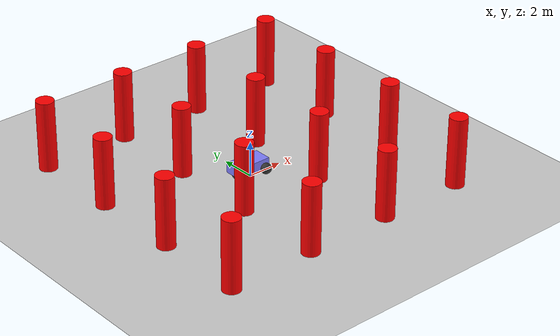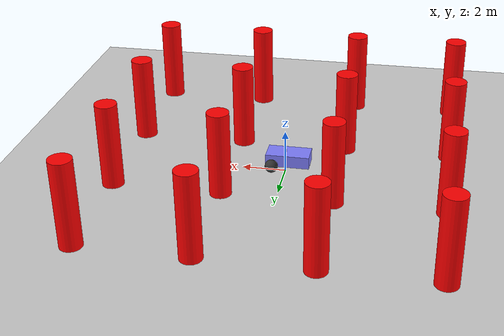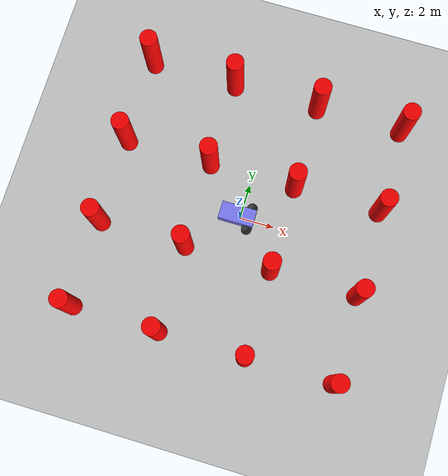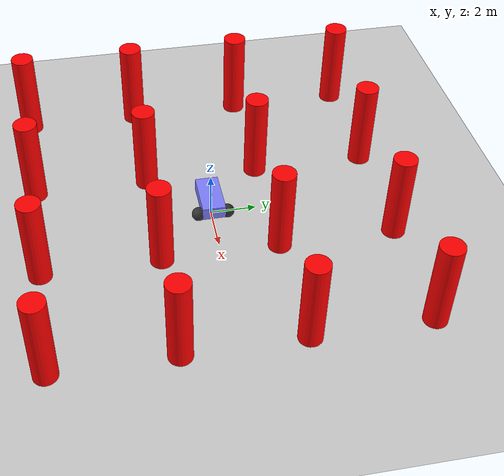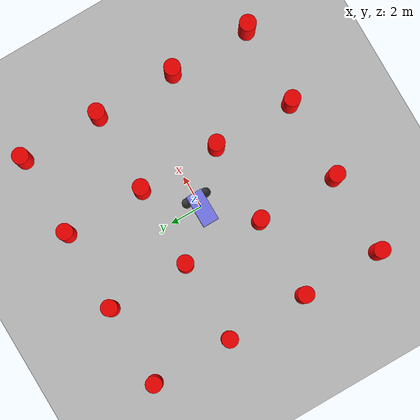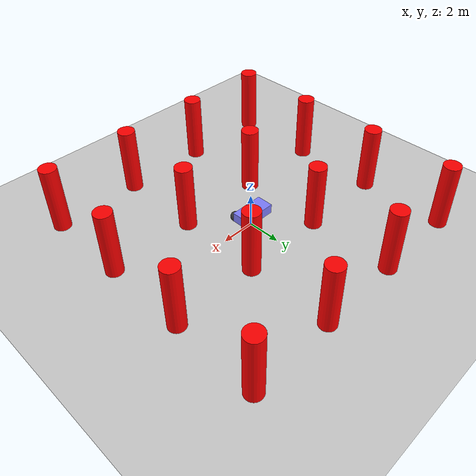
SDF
<?xml version="1.0" ?>
<sdf version="1.8">
  <world name="demo">
    <plugin
      filename="ignition-gazebo-physics-system"
      name="ignition::gazebo::systems::Physics">
    </plugin>
    <plugin
      filename="ignition-gazebo-sensors-system"
      name="ignition::gazebo::systems::Sensors">
      <render_engine>ogre2</render_engine>
    </plugin>
    <plugin
      filename="ignition-gazebo-scene-broadcaster-system"
      name="ignition::gazebo::systems::SceneBroadcaster">
    </plugin>
    <plugin
      filename="ignition-gazebo-user-commands-system"
      name="ignition::gazebo::systems::UserCommands">
    </plugin>
    <plugin
      filename="ignition-gazebo-contact-system"
      name="ignition::gazebo::systems::Contact">
    </plugin>
    <plugin
      filename="libignition-gazebo-imu-system.so"
      name="ignition::gazebo::systems::Imu">
    </plugin>

    <light name="sun" type="directional">
      <cast_shadows>true</cast_shadows>
      <pose>0 0 10 0 0 0</pose>
      <diffuse>0.8 0.8 0.8 1</diffuse>
      <specular>0.2 0.2 0.2 1</specular>
      <attenuation>
        <range>1000</range>
        <constant>0.9</constant>
        <linear>0.01</linear>
        <quadratic>0.001</quadratic>
      </attenuation>
      <direction>-0.5 0.1 -0.9</direction>
    </light>

    <model name="ground_plane">
      <static>true</static>
      <link name="link">
        <collision name="collision">
          <geometry>
            <plane>
              <normal>0 0 1</normal>
              <size>100 100</size>
            </plane>
          </geometry>
        </collision>
        <visual name="visual">
          <geometry>
            <plane>
              <normal>0 0 1</normal>
              <size>100 100</size>
            </plane>
          </geometry>
          <material>
            <ambient>0.8 0.8 0.8 1</ambient>
            <diffuse>0.8 0.8 0.8 1</diffuse>
            <specular>0.8 0.8 0.8 1</specular>
          </material>
        </visual>
      </link>
    </model>

    <include>
      <pose>-7.5 7.5 2 0 0 0</pose>
      <uri>home/aymeric/Documents/Programmation/ROS/rover_ws/src/rover_base_test1/gazebo/models/Cylindre</uri>
      <name>Cyl1</name>
    </include>

    <include>
      <pose>-2.5 7.5 2 0 0 0</pose>
      <uri>home/aymeric/Documents/Programmation/ROS/rover_ws/src/rover_base_test1/gazebo/models/Cylindre</uri>
      <name>Cyl2</name>
    </include>

    <include>
      <pose>2.5 7.5 2 0 0 0</pose>
      <uri>home/aymeric/Documents/Programmation/ROS/rover_ws/src/rover_base_test1/gazebo/models/Cylindre</uri>
      <name>Cyl3</name>
    </include>

    <include>
      <pose>7.5 7.5 2 0 0 0</pose>
      <uri>home/aymeric/Documents/Programmation/ROS/rover_ws/src/rover_base_test1/gazebo/models/Cylindre</uri>
      <name>Cyl4</name>
    </include>

    <include>
      <pose>-7.5 2.5 2 0 0 0</pose>
      <uri>home/aymeric/Documents/Programmation/ROS/rover_ws/src/rover_base_test1/gazebo/models/Cylindre</uri>
      <name>Cyl5</name>
    </include>

    <include>
      <pose>-2.5 2.5 2 0 0 0</pose>
      <uri>home/aymeric/Documents/Programmation/ROS/rover_ws/src/rover_base_test1/gazebo/models/Cylindre</uri>
      <name>Cyl6</name>
    </include>

    <include>
      <pose>2.5 2.5 2 0 0 0</pose>
      <uri>home/aymeric/Documents/Programmation/ROS/rover_ws/src/rover_base_test1/gazebo/models/Cylindre</uri>
      <name>Cyl7</name>
    </include>

    <include>
      <pose>7.5 2.5 2 0 0 0</pose>
      <uri>home/aymeric/Documents/Programmation/ROS/rover_ws/src/rover_base_test1/gazebo/models/Cylindre</uri>
      <name>Cyl8</name>
    </include>

    <include>
      <pose>-7.5 -2.5 2 0 0 0</pose>
      <uri>home/aymeric/Documents/Programmation/ROS/rover_ws/src/rover_base_test1/gazebo/models/Cylindre</uri>
      <name>Cyl9</name>
    </include>

    <include>
      <pose>-2.5 -2.5 2 0 0 0</pose>
      <uri>home/aymeric/Documents/Programmation/ROS/rover_ws/src/rover_base_test1/gazebo/models/Cylindre</uri>
      <name>Cyl10</name>
    </include>

    <include>
      <pose>2.5 -2.5 2 0 0 0</pose>
      <uri>home/aymeric/Documents/Programmation/ROS/rover_ws/src/rover_base_test1/gazebo/models/Cylindre</uri>
      <name>Cyl11</name>
    </include>

    <include>
      <pose>7.5 -2.5 2 0 0 0</pose>
      <uri>home/aymeric/Documents/Programmation/ROS/rover_ws/src/rover_base_test1/gazebo/models/Cylindre</uri>
      <name>Cyl12</name>
    </include>

    <include>
      <pose>-7.5 -7.5 2 0 0 0</pose>
      <uri>home/aymeric/Documents/Programmation/ROS/rover_ws/src/rover_base_test1/gazebo/models/Cylindre</uri>
      <name>Cyl13</name>
    </include>

    <include>
      <pose>-2.5 -7.5 2 0 0 0</pose>
      <uri>home/aymeric/Documents/Programmation/ROS/rover_ws/src/rover_base_test1/gazebo/models/Cylindre</uri>
      <name>Cyl14</name>
    </include>

    <include>
      <pose>2.5 -7.5 2 0 0 0</pose>
      <uri>home/aymeric/Documents/Programmation/ROS/rover_ws/src/rover_base_test1/gazebo/models/Cylindre</uri>
      <name>Cyl15</name>
    </include>

    <include>
      <pose>7.5 -7.5 2 0 0 0</pose>
      <uri>home/aymeric/Documents/Programmation/ROS/rover_ws/src/rover_base_test1/gazebo/models/Cylindre</uri>
      <name>Cyl16</name>
    </include>

    <include>
      <pose>0 0 0.55 0 0 0</pose>
      <!--Valide-->
      <uri>home/aymeric/Documents/Programmation/ROS/rover_ws/src/rover_base_test1/urdf/rover_base2.sdf</uri>
      <!--Valide-->
      <!--valide avec gazebo directement, non valide dand le launch : trouver une solution-->
      <name>rover_base2</name>

      <plugin
        filename="ignition-gazebo-joint-state-publisher-system"
        name="ignition::gazebo::systems::JointStatePublisher">
      </plugin>

      <plugin
        filename="ignition-gazebo-pose-publisher-system"
        name="ignition::gazebo::systems::PosePublisher">
        <publish_link_pose>true</publish_link_pose>
        <use_pose_vector_msg>true</use_pose_vector_msg>
        <static_publisher>true</static_publisher>
        <static_update_frequency>1</static_update_frequency>
      </plugin>

      <plugin
        filename="ignition-gazebo-odometry-publisher-system"
        name="ignition::gazebo::systems::OdometryPublisher">
        <odom_frame>rover_base2/odom</odom_frame>
        <robot_base_frame>rover_base2</robot_base_frame>
      </plugin>

      <plugin
          filename="ignition-gazebo-diff-drive-system"
          name="ignition::gazebo::systems::DiffDrive">
          <left_joint>left_wheel_joint</left_joint>
          <right_joint>right_wheel_joint</right_joint>
          <wheel_separation>1.2</wheel_separation>
          <wheel_radius>0.4</wheel_radius>
          <topic>cmd_vel</topic>
          <odom_publish_frequency>1</odom_publish_frequency>
          <max_linear_acceleration>1</max_linear_acceleration>
          <min_linear_acceleration>-1</min_linear_acceleration>
          <max_angular_acceleration>2</max_angular_acceleration>
          <min_angular_acceleration>-2</min_angular_acceleration>
          <max_linear_velocity>0.5</max_linear_velocity>
          <min_linear_velocity>-0.5</min_linear_velocity>
          <max_angular_velocity>1</max_angular_velocity>
          <min_angular_velocity>-1</min_angular_velocity>
      </plugin>

    </include>

  </world>
</sdf>

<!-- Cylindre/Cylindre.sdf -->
<sdf version="1.6">
  <model name="Cylindre">
    <static>true</static>
    <link name="Cylindre">
      <inertial>
        <mass>100</mass>
        <inertia>
          <ixx>210.42</ixx>
          <ixy>0</ixy>
          <ixz>0</ixz>
          <iyy>416.67</iyy>
          <iyz>0</iyz>
          <izz>210.42</izz>
        </inertia>
      </inertial>

      <collision name="collision">
        <geometry>
          <cylinder>
            <length>4</length>
            <radius>0.5</radius>
          </cylinder>
        </geometry>
      </collision>

      <visual name="visual">
        <geometry>
          <cylinder>
            <length>4</length>
            <radius>0.5</radius>
          </cylinder>
        </geometry>
        <material>
            <ambient>1 0 0 1</ambient>
            <diffuse>1 0 0 1</diffuse>
            <specular>1 0 0 1</specular>
        </material>
      </visual>
    </link>
  </model>
</sdf>

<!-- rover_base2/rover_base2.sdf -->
<sdf version="1.8">
    <model name='rover_base2'>
      <link name='base_link'>
        <pose>-0.151427 -0 0.175 0 -0 0</pose>
        <inertial>
          <mass>1.14395</mass>
          <inertia>
            <ixx>0.126164</ixx>
            <ixy>0</ixy>
            <ixz>0</ixz>
            <iyy>0.416519</iyy>
            <iyz>0</iyz>
            <izz>0.481014</izz>
          </inertia>
        </inertial>
        <visual name='visual_chassis'>
          <geometry>
            <box>
              <size>2.01142 1 0.568726</size>
            </box>
          </geometry>
          <material>
            <ambient>0.5 0.5 1.0 1</ambient>
            <diffuse>0.5 0.5 1.0 1</diffuse>
            <specular>0.0 0.0 1.0 1</specular>
          </material>
        </visual>
        <collision name='collision_chassis'>
          <geometry>
            <box>
              <size>2.01142 1 0.568726</size>
            </box>
          </geometry>
        </collision>
      </link>

      <link name='left_wheel'>
        <pose>0.554283 0.625029 -0.025 -1.5707 0 0</pose>
        <inertial>
          <mass>2</mass>
          <inertia>
            <ixx>0.145833</ixx>
            <ixy>0</ixy>
            <ixz>0</ixz>
            <iyy>0.145833</iyy>
            <iyz>0</iyz>
            <izz>0.125</izz>
          </inertia>
        </inertial>
        <visual name='visual_left_wheel'>
          <geometry>
            <sphere>
              <radius>0.3</radius>
            </sphere>
          </geometry>
          <material>
            <ambient>0.2 0.2 0.2 1</ambient>
            <diffuse>0.2 0.2 0.2 1</diffuse>
            <specular>0.2 0.2 0.2 1</specular>
          </material>
        </visual>
        <collision name='collision_left_wheel'>
          <geometry>
            <sphere>
              <radius>0.3</radius>
            </sphere>
          </geometry>
        </collision>
      </link>

      <link name='right_wheel'>
        <pose>0.554282 -0.625029 -0.025 -1.5707 0 0</pose>
        <inertial>
          <mass>2</mass>
          <inertia>
            <ixx>0.145833</ixx>
            <ixy>0</ixy>
            <ixz>0</ixz>
            <iyy>0.145833</iyy>
            <iyz>0</iyz>
            <izz>0.125</izz>
          </inertia>
        </inertial>
        <visual name='visual_right_wheel'>
          <geometry>
            <sphere>
              <radius>0.3</radius>
            </sphere>
          </geometry>
          <material>
            <ambient>0.2 0.2 0.2 1</ambient>
            <diffuse>0.2 0.2 0.2 1</diffuse>
            <specular>0.2 0.2 0.2 1</specular>
          </material>
        </visual>
        <collision name='collision_right_wheel'>
          <geometry>
            <sphere>
              <radius>0.3</radius>
            </sphere>
          </geometry>
        </collision>
      </link>

      <link name='caster'>
        <pose>-0.957138 -0 -0.125 0 -0 0</pose>
        <inertial>
          <mass>1</mass>
          <inertia>
            <ixx>0.1</ixx>
            <ixy>0</ixy>
            <ixz>0</ixz>
            <iyy>0.1</iyy>
            <iyz>0</iyz>
            <izz>0.1</izz>
          </inertia>
        </inertial>
        <visual name='visual_caster'>
          <geometry>
            <sphere>
              <radius>0.2</radius>
            </sphere>
          </geometry>
          <material>
            <ambient>0.2 0.2 0.2 1</ambient>
            <diffuse>0.2 0.2 0.2 1</diffuse>
            <specular>0.2 0.2 0.2 1</specular>
          </material>
        </visual>
        <collision name='collision_caster'>
          <geometry>
            <sphere>
              <radius>0.2</radius>
            </sphere>
          </geometry>
        </collision>
      </link>

      <link name="lidar_link">
        <pose>0 0 0.5 0 0 0</pose>
        <inertial>
          <mass>0.1</mass>
          <inertia>
            <ixx>0.000166667</ixx>
            <iyy>0.000166667</iyy>
            <izz>0.000166667</izz>
          </inertia>
        </inertial>
        <collision name="collision">
          <geometry>
            <box>
              <size>0.1 0.1 0.1</size>
            </box>
          </geometry>
        </collision>
        <visual name="visual">
          <geometry>
            <box>
              <size>0.1 0.1 0.1</size>
            </box>
          </geometry>
        </visual>
        <sensor name='gpu_lidar' type='gpu_lidar'>
          <pose>0 0 0 0 0 0</pose>
          <topic>scan</topic>
          <ignition_frame_id>diff_drive/lidar_link</ignition_frame_id>
          <update_rate>10</update_rate>
          <lidar>
            <scan>
              <horizontal>
                <samples>640</samples>
                <resolution>1</resolution>
                <min_angle>-1.396263</min_angle>
                <max_angle>1.396263</max_angle>
              </horizontal>
              <vertical>
                <samples>1</samples>
                <resolution>1</resolution>
                <min_angle>0.0</min_angle>
                <max_angle>0.0</max_angle>
              </vertical>
            </scan>
            <range>
              <min>0.08</min>
              <max>10.0</max>
              <resolution>0.01</resolution>
            </range>
          </lidar>
          <visualize>true</visualize>
        </sensor>
      </link>

      <joint name='lidar_joint' type='fixed'>
        <parent>base_link</parent>
        <child>lidar_link</child>
      </joint>

      <joint name='left_wheel_joint' type='revolute'>
        <parent>base_link</parent>
        <child>left_wheel</child>
        <axis>
          <xyz>0 0 1</xyz>
          <limit>
            <lower>-1.79769e+308</lower>
            <upper>1.79769e+308</upper>
          </limit>
        </axis>
      </joint>

      <joint name='right_wheel_joint' type='revolute'>
        <parent>base_link</parent>
        <child>right_wheel</child>
        <axis>
          <xyz>0 0 1</xyz>
          <limit>
            <lower>-1.79769e+308</lower>
            <upper>1.79769e+308</upper>
          </limit>
        </axis>
      </joint>

      <joint name='caster_wheel' type='ball'>
        <parent>base_link</parent>
        <child>caster</child>
      </joint>

      <plugin
        filename="ignition-gazebo-diff-drive-system"
        name="ignition::gazebo::systems::DiffDrive">
        <left_joint>left_wheel_joint</left_joint>
        <right_joint>right_wheel_joint</right_joint>
        <wheel_separation>1.25</wheel_separation>
        <wheel_radius>0.3</wheel_radius>
        <odom_publish_frequency>1</odom_publish_frequency>
        <max_linear_acceleration>1</max_linear_acceleration>
        <min_linear_acceleration>-1</min_linear_acceleration>
        <max_angular_acceleration>2</max_angular_acceleration>
        <min_angular_acceleration>-2</min_angular_acceleration>
        <max_linear_velocity>0.5</max_linear_velocity>
        <min_linear_velocity>-0.5</min_linear_velocity>
        <max_angular_velocity>1</max_angular_velocity>
        <min_angular_velocity>-1</min_angular_velocity>
      </plugin>
    </model>
</sdf>
